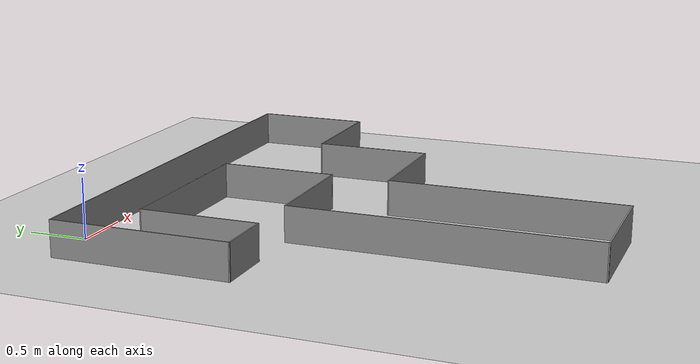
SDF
<sdf version="1.4">
  <world name="default">

    <scene>
      <ambient>0.4 0.4 0.4 1</ambient>
      <background>0.7 0.7 0.7 1</background>
      <shadows>true</shadows>
    </scene>

    <!-- A global light source -->
    <include>
      <uri>model://sun</uri>
    </include>

    <!-- A ground plane -->
    <include>
      <uri>model://ground_plane</uri>
    </include>

    <include>
      <uri>model://turtlebot3_maze3</uri>
    </include>

    <physics type="ode">
      <real_time_update_rate>1000.0</real_time_update_rate>
      <max_step_size>0.001</max_step_size>
      <real_time_factor>1</real_time_factor>
      <ode>
        <solver>
          <type>quick</type>
          <iters>150</iters>
          <precon_iters>0</precon_iters>
          <sor>1.400000</sor>
          <use_dynamic_moi_rescaling>1</use_dynamic_moi_rescaling>
        </solver>
        <constraints>
          <cfm>0.00001</cfm>
          <erp>0.2</erp>
          <contact_max_correcting_vel>2000.000000</contact_max_correcting_vel>
          <contact_surface_layer>0.01000</contact_surface_layer>
        </constraints>
      </ode>
    </physics>
  </world>

</sdf>

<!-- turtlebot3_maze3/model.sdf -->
<sdf version='1.7'>
  <model name='Maze1'>
    <pose>1.51 -1.985 0 0 -0 0</pose>
    <link name='Wall_0'>
      <collision name='Wall_0_Collision'>
        <geometry>
          <box>
            <size>3.97 0.01 0.3</size>
          </box>
        </geometry>
        <pose>0 0 0.15 0 -0 0</pose>
      </collision>
      <visual name='Wall_0_Visual'>
        <pose>0 0 0.15 0 -0 0</pose>
        <geometry>
          <box>
            <size>3.97 0.01 0.3</size>
          </box>
        </geometry>
        <material>
          <script>
            <uri>file://media/materials/scripts/gazebo.material</uri>
            <name>Gazebo/Grey</name>
          </script>
          <ambient>1 1 1 1</ambient>
        </material>
        <meta>
          <layer>0</layer>
        </meta>
      </visual>
      <pose>-0 1.985 0 0 -0 0</pose>
    </link>
    <link name='Wall_10'>
      <collision name='Wall_10_Collision'>
        <geometry>
          <box>
            <size>1 0.01 0.3</size>
          </box>
        </geometry>
        <pose>0 0 0.15 0 -0 0</pose>
      </collision>
      <visual name='Wall_10_Visual'>
        <pose>0 0 0.15 0 -0 0</pose>
        <geometry>
          <box>
            <size>1 0.01 0.3</size>
          </box>
        </geometry>
        <material>
          <script>
            <uri>file://media/materials/scripts/gazebo.material</uri>
            <name>Gazebo/Grey</name>
          </script>
          <ambient>1 1 1 1</ambient>
        </material>
        <meta>
          <layer>0</layer>
        </meta>
      </visual>
      <pose>-0.495 0.505 0 0 -0 0</pose>
    </link>
    <link name='Wall_13'>
      <collision name='Wall_13_Collision'>
        <geometry>
          <box>
            <size>1 0.01 0.3</size>
          </box>
        </geometry>
        <pose>0 0 0.15 0 -0 0</pose>
      </collision>
      <visual name='Wall_13_Visual'>
        <pose>0 0 0.15 0 -0 0</pose>
        <geometry>
          <box>
            <size>1 0.01 0.3</size>
          </box>
        </geometry>
        <material>
          <script>
            <uri>file://media/materials/scripts/gazebo.material</uri>
            <name>Gazebo/Grey</name>
          </script>
          <ambient>1 1 1 1</ambient>
        </material>
        <meta>
          <layer>0</layer>
        </meta>
      </visual>
      <pose>-0 1 0 0 -0 1.5708</pose>
    </link>
    <link name='Wall_14'>
      <collision name='Wall_14_Collision'>
        <geometry>
          <box>
            <size>1.5 0.01 0.3</size>
          </box>
        </geometry>
        <pose>0 0 0.15 0 -0 0</pose>
      </collision>
      <visual name='Wall_14_Visual'>
        <pose>0 0 0.15 0 -0 0</pose>
        <geometry>
          <box>
            <size>1.5 0.01 0.3</size>
          </box>
        </geometry>
        <material>
          <script>
            <uri>file://media/materials/scripts/gazebo.material</uri>
            <name>Gazebo/Grey</name>
          </script>
          <ambient>1 1 1 1</ambient>
        </material>
        <meta>
          <layer>0</layer>
        </meta>
      </visual>
      <pose>-0.745 1.495 0 0 -0 3.14159</pose>
    </link>
    <link name='Wall_17'>
      <collision name='Wall_17_Collision'>
        <geometry>
          <box>
            <size>1 0.01 0.3</size>
          </box>
        </geometry>
        <pose>0 0 0.15 0 -0 0</pose>
      </collision>
      <visual name='Wall_17_Visual'>
        <pose>0 0 0.15 0 -0 0</pose>
        <geometry>
          <box>
            <size>1 0.01 0.3</size>
          </box>
        </geometry>
        <material>
          <script>
            <uri>file://media/materials/scripts/gazebo.material</uri>
            <name>Gazebo/Grey</name>
          </script>
          <ambient>1 1 1 1</ambient>
        </material>
        <meta>
          <layer>0</layer>
        </meta>
      </visual>
      <pose>-1.49 1 0 0 -0 -1.5708</pose>
    </link>
    <link name='Wall_18'>
      <collision name='Wall_18_Collision'>
        <geometry>
          <box>
            <size>0.5 0.01 0.3</size>
          </box>
        </geometry>
        <pose>0 0 0.15 0 -0 0</pose>
      </collision>
      <visual name='Wall_18_Visual'>
        <pose>0 0 0.15 0 -0 0</pose>
        <geometry>
          <box>
            <size>0.5 0.01 0.3</size>
          </box>
        </geometry>
        <material>
          <script>
            <uri>file://media/materials/scripts/gazebo.material</uri>
            <name>Gazebo/Grey</name>
          </script>
          <ambient>1 1 1 1</ambient>
        </material>
        <meta>
          <layer>0</layer>
        </meta>
      </visual>
      <pose>-1.735 0.505 0 0 -0 3.14159</pose>
    </link>
    <link name='Wall_19'>
      <collision name='Wall_19_Collision'>
        <geometry>
          <box>
            <size>1.49 0.01 0.3</size>
          </box>
        </geometry>
        <pose>0 0 0.15 0 -0 0</pose>
      </collision>
      <visual name='Wall_19_Visual'>
        <pose>0 0 0.15 0 -0 0</pose>
        <geometry>
          <box>
            <size>1.49 0.01 0.3</size>
          </box>
        </geometry>
        <material>
          <script>
            <uri>file://media/materials/scripts/gazebo.material</uri>
            <name>Gazebo/Grey</name>
          </script>
          <ambient>1 1 1 1</ambient>
        </material>
        <meta>
          <layer>0</layer>
        </meta>
      </visual>
      <pose>-1.98 1.245 0 0 -0 1.5708</pose>
    </link>
    <link name='Wall_2'>
      <collision name='Wall_2_Collision'>
        <geometry>
          <box>
            <size>1 0.01 0.3</size>
          </box>
        </geometry>
        <pose>0 0 0.15 0 -0 0</pose>
      </collision>
      <visual name='Wall_2_Visual'>
        <pose>0 0 0.15 0 -0 0</pose>
        <geometry>
          <box>
            <size>1 0.01 0.3</size>
          </box>
        </geometry>
        <material>
          <script>
            <uri>file://media/materials/scripts/gazebo.material</uri>
            <name>Gazebo/Grey</name>
          </script>
          <ambient>1 1 1 1</ambient>
        </material>
        <meta>
          <layer>0</layer>
        </meta>
      </visual>
      <pose>1.98 1.49 0 0 -0 -1.5708</pose>
    </link>
    <link name='Wall_3'>
      <collision name='Wall_3_Collision'>
        <geometry>
          <box>
            <size>1 0.01 0.3</size>
          </box>
        </geometry>
        <pose>0 0 0.15 0 -0 0</pose>
      </collision>
      <visual name='Wall_3_Visual'>
        <pose>0 0 0.15 0 -0 0</pose>
        <geometry>
          <box>
            <size>1 0.01 0.3</size>
          </box>
        </geometry>
        <material>
          <script>
            <uri>file://media/materials/scripts/gazebo.material</uri>
            <name>Gazebo/Grey</name>
          </script>
          <ambient>1 1 1 1</ambient>
        </material>
        <meta>
          <layer>0</layer>
        </meta>
      </visual>
      <pose>1.485 0.995 0 0 -0 3.14159</pose>
    </link>
    <link name='Wall_5'>
      <collision name='Wall_5_Collision'>
        <geometry>
          <box>
            <size>1 0.01 0.3</size>
          </box>
        </geometry>
        <pose>0 0 0.15 0 -0 0</pose>
      </collision>
      <visual name='Wall_5_Visual'>
        <pose>0 0 0.15 0 -0 0</pose>
        <geometry>
          <box>
            <size>1 0.01 0.3</size>
          </box>
        </geometry>
        <material>
          <script>
            <uri>file://media/materials/scripts/gazebo.material</uri>
            <name>Gazebo/Grey</name>
          </script>
          <ambient>1 1 1 1</ambient>
        </material>
        <meta>
          <layer>0</layer>
        </meta>
      </visual>
      <pose>0.99 0.5 0 0 -0 -1.5708</pose>
    </link>
    <link name='Wall_6'>
      <collision name='Wall_6_Collision'>
        <geometry>
          <box>
            <size>1 0.01 0.3</size>
          </box>
        </geometry>
        <pose>0 0 0.15 0 -0 0</pose>
      </collision>
      <visual name='Wall_6_Visual'>
        <pose>0 0 0.15 0 -0 0</pose>
        <geometry>
          <box>
            <size>1 0.01 0.3</size>
          </box>
        </geometry>
        <material>
          <script>
            <uri>file://media/materials/scripts/gazebo.material</uri>
            <name>Gazebo/Grey</name>
          </script>
          <ambient>1 1 1 1</ambient>
        </material>
        <meta>
          <layer>0</layer>
        </meta>
      </visual>
      <pose>0.495 0.005 0 0 -0 3.14159</pose>
    </link>
    <link name='Wall_7'>
      <collision name='Wall_7_Collision'>
        <geometry>
          <box>
            <size>2 0.01 0.3</size>
          </box>
        </geometry>
        <pose>0 0 0.15 0 -0 0</pose>
      </collision>
      <visual name='Wall_7_Visual'>
        <pose>0 0 0.15 0 -0 0</pose>
        <geometry>
          <box>
            <size>2 0.01 0.3</size>
          </box>
        </geometry>
        <material>
          <script>
            <uri>file://media/materials/scripts/gazebo.material</uri>
            <name>Gazebo/Grey</name>
          </script>
          <ambient>1 1 1 1</ambient>
        </material>
        <meta>
          <layer>0</layer>
        </meta>
      </visual>
      <pose>-0 -0.99 0 0 -0 -1.5708</pose>
    </link>
    <link name='Wall_8'>
      <collision name='Wall_8_Collision'>
        <geometry>
          <box>
            <size>1 0.01 0.3</size>
          </box>
        </geometry>
        <pose>0 0 0.15 0 -0 0</pose>
      </collision>
      <visual name='Wall_8_Visual'>
        <pose>0 0 0.15 0 -0 0</pose>
        <geometry>
          <box>
            <size>1 0.01 0.3</size>
          </box>
        </geometry>
        <material>
          <script>
            <uri>file://media/materials/scripts/gazebo.material</uri>
            <name>Gazebo/Grey</name>
          </script>
          <ambient>1 1 1 1</ambient>
        </material>
        <meta>
          <layer>0</layer>
        </meta>
      </visual>
      <pose>-0.495 -1.985 0 0 -0 3.14159</pose>
    </link>
    <link name='Wall_9'>
      <collision name='Wall_9_Collision'>
        <geometry>
          <box>
            <size>2.5 0.01 0.3</size>
          </box>
        </geometry>
        <pose>0 0 0.15 0 -0 0</pose>
      </collision>
      <visual name='Wall_9_Visual'>
        <pose>0 0 0.15 0 -0 0</pose>
        <geometry>
          <box>
            <size>2.5 0.01 0.3</size>
          </box>
        </geometry>
        <material>
          <script>
            <uri>file://media/materials/scripts/gazebo.material</uri>
            <name>Gazebo/Grey</name>
          </script>
          <ambient>1 1 1 1</ambient>
        </material>
        <meta>
          <layer>0</layer>
        </meta>
      </visual>
      <pose>-0.99 -0.74 0 0 -0 1.5708</pose>
    </link>
    <static>1</static>
  </model>
</sdf>
